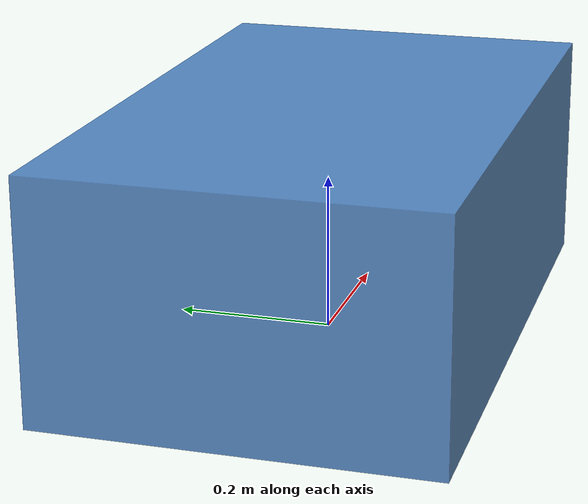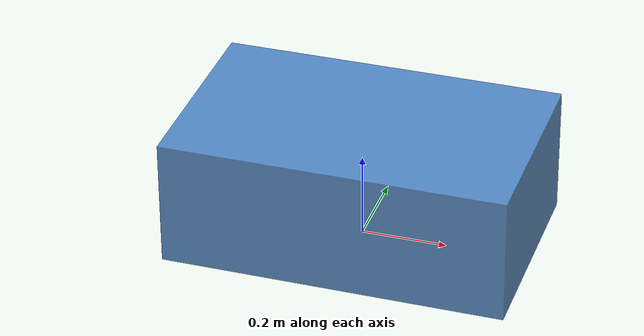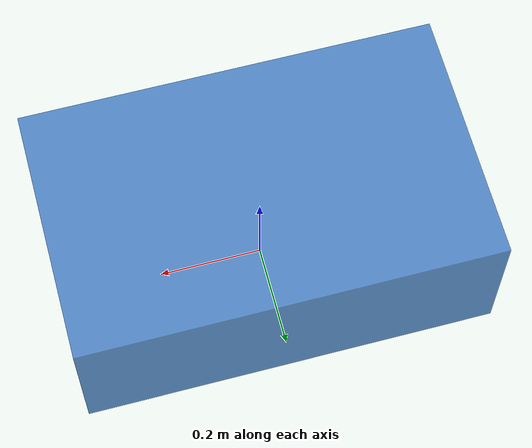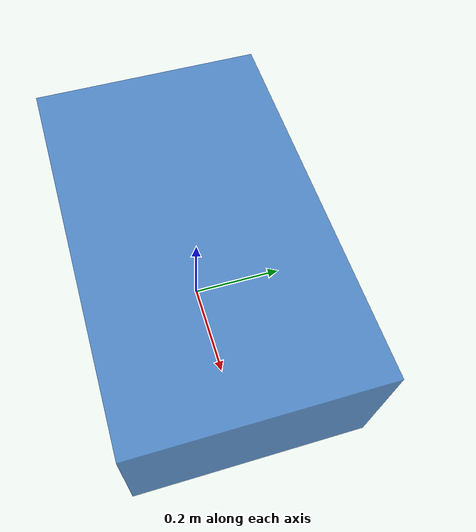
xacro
<?xml version="1.0"?>
<robot name="amr" xmlns:xacro="http://www.ros.org/wiki/xacro">
  <xacro:arg name="laser_xyz" default="0 0 0"/>
  <xacro:arg name="laser_rpy" default="0 0 0"/>
  <xacro:arg name="camera_xyz" default="0.35 0.12 0.25"/>
  <xacro:arg name="camera_rpy" default="0 0 0"/>
  <xacro:arg name="camera2_xyz" default="0.35 -0.12 0.25"/>
  <xacro:arg name="camera2_rpy" default="0 0 0"/>

  <link name="base_link">
    <visual>
      <origin xyz="0 0 0.15" rpy="0 0 0"/>
      <geometry>
        <box size="0.80 0.49 0.30"/>
      </geometry>
      <material name="amr_gray">
        <color rgba="0.2 0.45 0.75 0.8"/>
      </material>
    </visual>
    <collision>
      <origin xyz="0 0 0.15" rpy="0 0 0"/>
      <geometry>
        <box size="0.80 0.49 0.30"/>
      </geometry>
    </collision>
  </link>

  <link name="laser_link"/>
  <joint name="base_to_laser" type="fixed">
    <parent link="base_link"/>
    <child link="laser_link"/>
    <origin xyz="$(arg laser_xyz)" rpy="$(arg laser_rpy)"/>
  </joint>

  <!-- 相机 1：话题 /camera/depth/points_cam 的坐标系占位 -->
  <link name="camera_link"/>
  <joint name="base_to_camera" type="fixed">
    <parent link="base_link"/>
    <child link="camera_link"/>
    <origin xyz="$(arg camera_xyz)" rpy="$(arg camera_rpy)"/>
  </joint>
  <link name="camera_depth_frame"/>
  <joint name="camera_depth_joint" type="fixed">
    <parent link="camera_link"/>
    <child link="camera_depth_frame"/>
    <origin xyz="0 0 0" rpy="0 0 0"/>
  </joint>
  <link name="camera_depth_optical_frame"/>
  <joint name="camera_depth_optical_joint" type="fixed">
    <parent link="camera_depth_frame"/>
    <child link="camera_depth_optical_frame"/>
    <!-- ROS 光学坐标系：Z 前、X 右、Y 下 -->
    <origin xyz="0 0 0" rpy="-1.5707963 0 -1.5707963"/>
  </joint>

  <!-- 相机 2：话题 /camera2/depth/points_cam -->
  <link name="camera2_link"/>
  <joint name="base_to_camera2" type="fixed">
    <parent link="base_link"/>
    <child link="camera2_link"/>
    <origin xyz="$(arg camera2_xyz)" rpy="$(arg camera2_rpy)"/>
  </joint>
  <link name="camera2_depth_frame"/>
  <joint name="camera2_depth_joint" type="fixed">
    <parent link="camera2_link"/>
    <child link="camera2_depth_frame"/>
    <origin xyz="0 0 0" rpy="0 0 0"/>
  </joint>
  <link name="camera2_depth_optical_frame"/>
  <joint name="camera2_depth_optical_joint" type="fixed">
    <parent link="camera2_depth_frame"/>
    <child link="camera2_depth_optical_frame"/>
    <origin xyz="0 0 0" rpy="-1.5707963 0 -1.5707963"/>
  </joint>
</robot>
